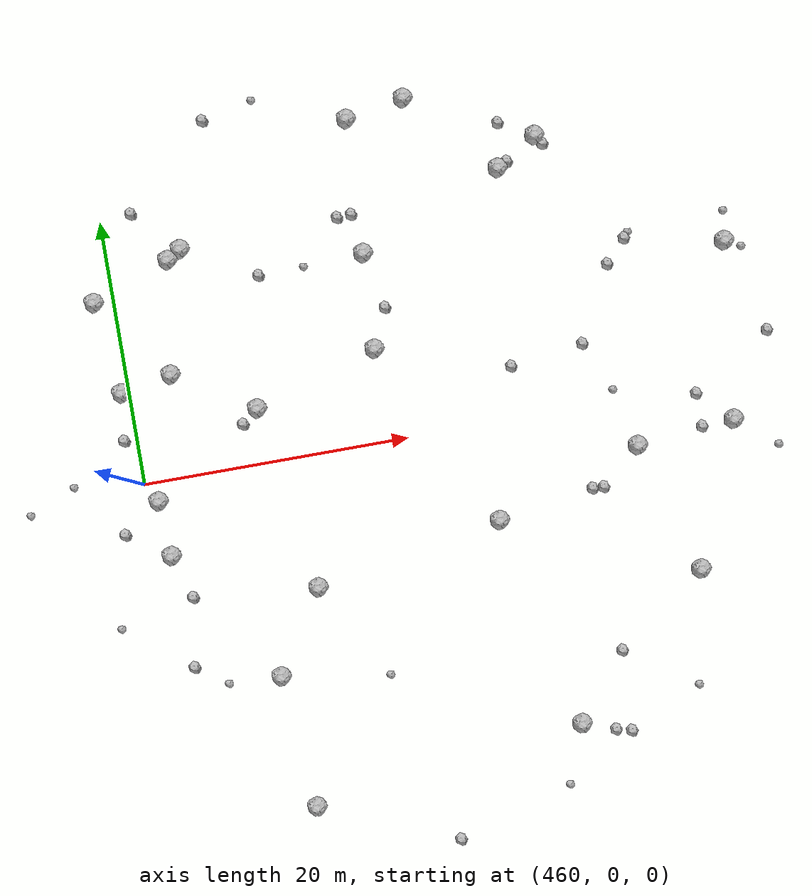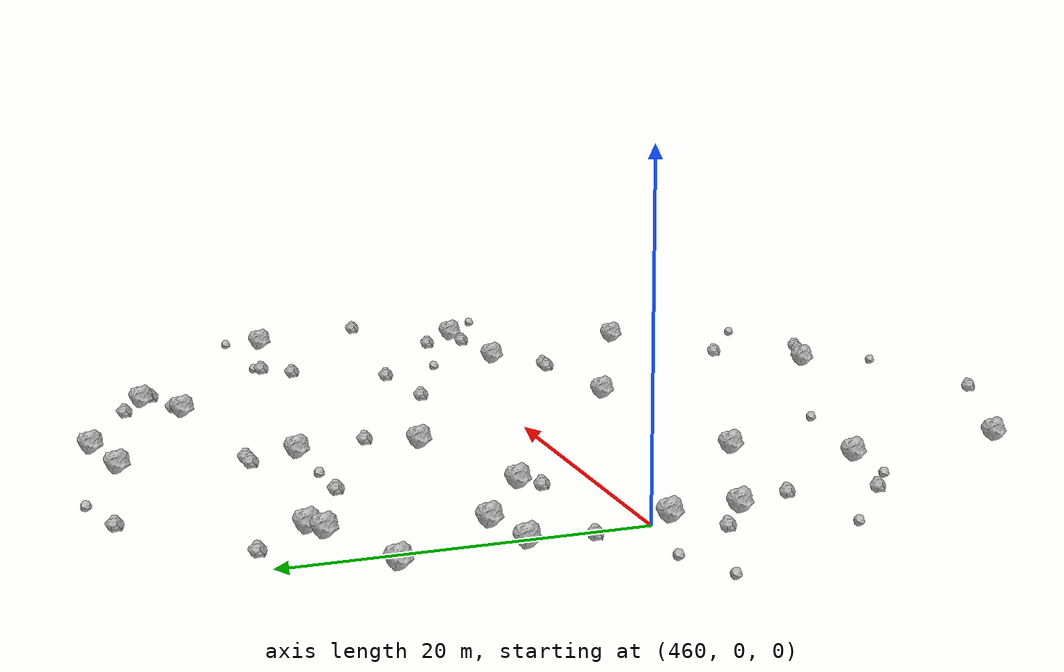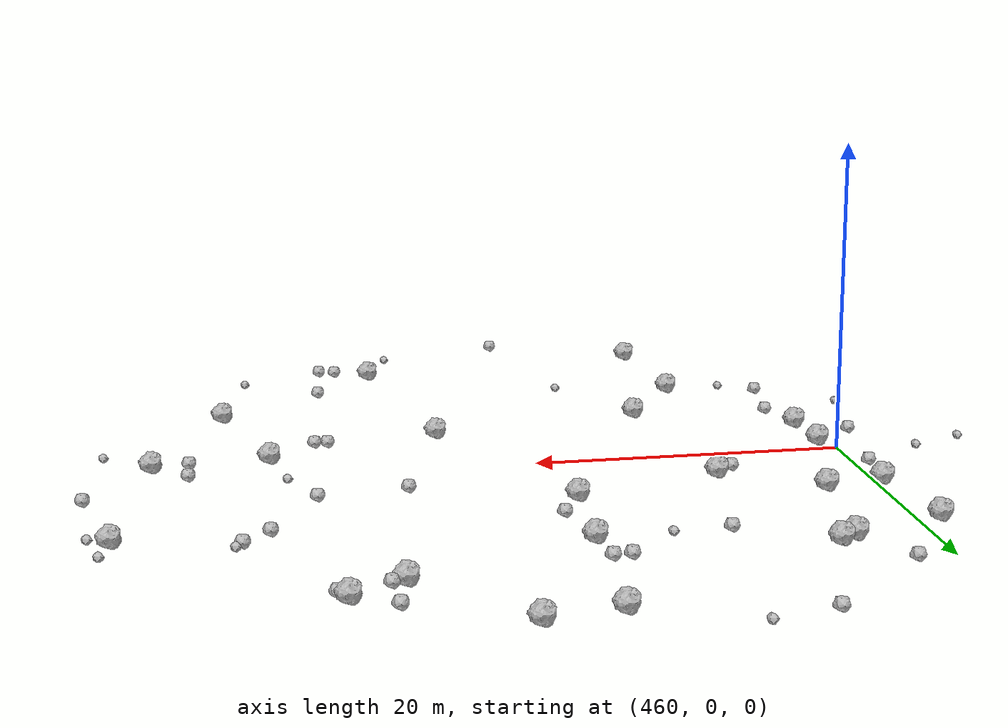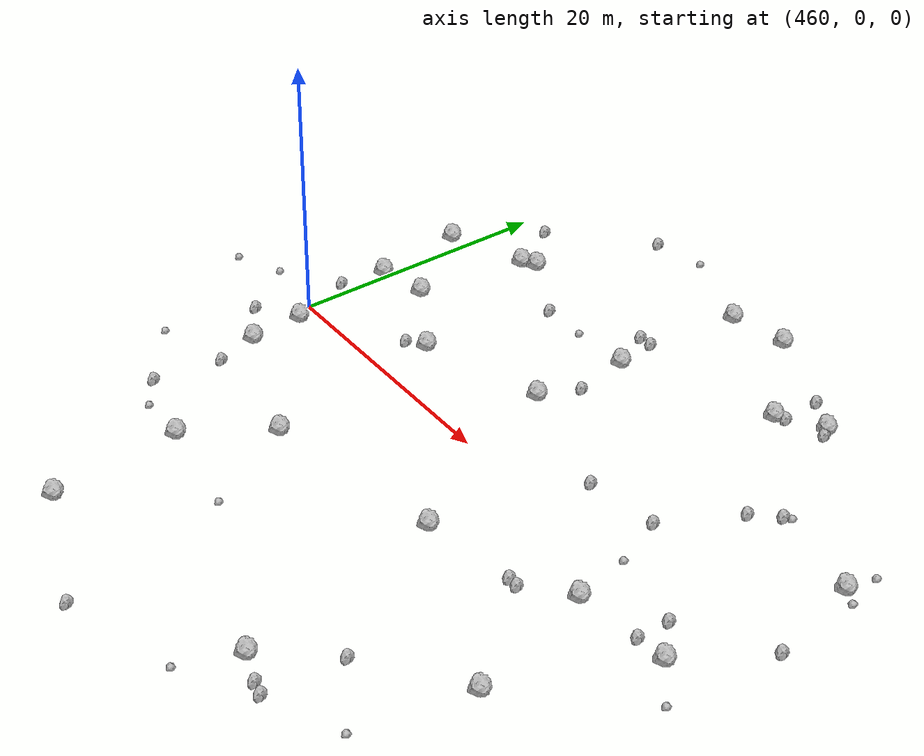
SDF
<sdf version="1.6">
 <world name="default">
  <include><uri>model://sun</uri></include>
  <model name="rock1_12_4">
   <include><uri>model://rock1</uri><pose>479.09438995216635 14.254143508412575 0.5 0 0 0</pose></include>
  </model>
  <model name="rock1_12_5">
   <include><uri>model://rock1</uri><pose>488.9528455162369 -22.9809109389917 0.5 0 0 0</pose></include>
  </model>
  <model name="rock1_12_6">
   <include><uri>model://rock1</uri><pose>468.67835813835376 -25.564746800711298 0.5 0 0 0</pose></include>
  </model>
  <model name="rock1_12_7">
   <include><uri>model://rock1</uri><pose>504.1170772650941 -2.809096154738082 0.5 0 0 0</pose></include>
  </model>
  <model name="rock1_12_8">
   <include><uri>model://rock1</uri><pose>505.89037725520245 10.497972299388671 0.5 0 0 0</pose></include>
  </model>
  <model name="rock1_12_9">
   <include><uri>model://rock1</uri><pose>467.7175810111563 -15.742663338489177 0.5 0 0 0</pose></include>
  </model>
  <model name="rock1_12_10">
   <include><uri>model://rock1</uri><pose>490.153813544646 18.856234155359445 0.5 0 0 0</pose></include>
  </model>
  <model name="rock1_12_11">
   <include><uri>model://rock1</uri><pose>484.06407044528453 25.331857002589764 0.5 0 0 0</pose></include>
  </model>
  <model name="rock1_12_12">
   <include><uri>model://rock1</uri><pose>499.6890702647542 -13.335916234972089 0.5 0 0 0</pose></include>
  </model>
  <model name="rock1_12_13">
   <include><uri>model://rock1</uri><pose>478.6803713840675 7.015661353299613 0.5 0 0 0</pose></include>
  </model>
  <model name="rock1_12_14">
   <include><uri>model://rock1</uri><pose>461.20905230087806 -5.574785045455709 0.5 0 0 0</pose></include>
  </model>
  <model name="rock1_12_15">
   <include><uri>model://rock1</uri><pose>460.92879205279655 -1.4146639590900314 0.5 0 0 0</pose></include>
  </model>
  <model name="rock1_12_16">
   <include><uri>model://rock1</uri><pose>479.5866596808105 24.499907551225377 0.5 0 0 0</pose></include>
  </model>
  <model name="rock1_12_17">
   <include><uri>model://rock1</uri><pose>485.6307781138918 -7.200320577856715 0.5 0 0 0</pose></include>
  </model>
  <model name="rock1_12_18">
   <include><uri>model://rock1</uri><pose>463.37336177099735 7.753586929012101 0.5 0 0 0</pose></include>
  </model>
  <model name="rock1_12_19">
   <include><uri>model://rock1</uri><pose>493.3138959650577 20.834263602846555 0.5 0 0 0</pose></include>
  </model>
  <model name="rock1_12_20">
   <include><uri>model://rock1</uri><pose>496.72657896013806 -3.4935856143528774 0.5 0 0 0</pose></include>
  </model>
  <model name="rock1_12_21">
   <include><uri>model://rock1</uri><pose>469.3013500010062 4.129140868711779 0.5 0 0 0</pose></include>
  </model>
  <model name="rock1_12_22">
   <include><uri>model://rock1</uri><pose>464.57964932640505 16.289464268243897 0.5 0 0 0</pose></include>
  </model>
  <model name="rock1_12_23">
   <include><uri>model://rock1</uri><pose>458.6239280804556 14.04919535004646 0.5 0 0 0</pose></include>
  </model>
  <model name="rock1_12_24">
   <include><uri>model://rock1</uri><pose>471.52041377378964 -9.754964522895303 0.5 0 0 0</pose></include>
  </model>
  <model name="rock1_12_25">
   <include><uri>model://rock1</uri><pose>465.6278170083073 16.94441976155739 0.5 0 0 0</pose></include>
  </model>
  <model name="rock1_12_26">
   <include><uri>model://rock1</uri><pose>459.54353860711575 7.008527247787072 0.5 0 0 0</pose></include>
  </model>
  <model name="rock2_12_0">
   <include><uri>model://rock2</uri><pose>468.87107445078567 26.307079612029447 0.3 0 0 0</pose></include>
  </model>
  <model name="rock2_12_1">
   <include><uri>model://rock2</uri><pose>478.7065732478053 17.328886800524238 0.3 0 0 0</pose></include>
  </model>
  <model name="rock2_12_2">
   <include><uri>model://rock2</uri><pose>492.857486046319 -6.064455897514666 0.3 0 0 0</pose></include>
  </model>
  <model name="rock2_12_3">
   <include><uri>model://rock2</uri><pose>490.9243893020661 19.259980891475443 0.3 0 0 0</pose></include>
  </model>
  <model name="rock2_12_4">
   <include><uri>model://rock2</uri><pose>501.7402950681519 -0.43876255107669593 0.3 0 0 0</pose></include>
  </model>
  <model name="rock2_12_5">
   <include><uri>model://rock2</uri><pose>494.0465440451639 4.712888320022444 0.3 0 0 0</pose></include>
  </model>
  <model name="rock2_12_6">
   <include><uri>model://rock2</uri><pose>458.0531955697223 -3.468535794661335 0.3 0 0 0</pose></include>
  </model>
  <model name="rock2_12_7">
   <include><uri>model://rock2</uri><pose>478.6827111484657 -29.787027923969966 0.3 0 0 0</pose></include>
  </model>
  <model name="rock2_12_8">
   <include><uri>model://rock2</uri><pose>462.2380966979197 -8.88391582462 0.3 0 0 0</pose></include>
  </model>
  <model name="rock2_12_9">
   <include><uri>model://rock2</uri><pose>492.86243868194475 -18.25170649188409 0.3 0 0 0</pose></include>
  </model>
  <model name="rock2_12_10">
   <include><uri>model://rock2</uri><pose>491.35797883265707 -23.874045413391137 0.3 0 0 0</pose></include>
  </model>
  <model name="rock2_12_11">
   <include><uri>model://rock2</uri><pose>496.9610378308364 10.302010794154128 0.3 0 0 0</pose></include>
  </model>
  <model name="rock2_12_12">
   <include><uri>model://rock2</uri><pose>461.481518116302 -13.99563933763006 0.3 0 0 0</pose></include>
  </model>
  <model name="rock2_12_13">
   <include><uri>model://rock2</uri><pose>479.9823301990363 9.961297676078352 0.3 0 0 0</pose></include>
  </model>
  <model name="rock2_12_14">
   <include><uri>model://rock2</uri><pose>492.4906698087074 -24.167469661803917 0.3 0 0 0</pose></include>
  </model>
  <model name="rock2_12_15">
   <include><uri>model://rock2</uri><pose>490.7692197070642 22.28165928499675 0.3 0 0 0</pose></include>
  </model>
  <model name="rock2_12_16">
   <include><uri>model://rock2</uri><pose>501.73207927076476 -2.9331985515677452 0.3 0 0 0</pose></include>
  </model>
  <model name="rock2_12_17">
   <include><uri>model://rock2</uri><pose>498.5455762840381 12.005071579860562 0.3 0 0 0</pose></include>
  </model>
  <model name="rock2_12_18">
   <include><uri>model://rock2</uri><pose>493.80486314637074 20.144169603508026 0.3 0 0 0</pose></include>
  </model>
  <model name="rock2_12_19">
   <include><uri>model://rock2</uri><pose>459.11181054656504 3.4707112155442985 0.3 0 0 0</pose></include>
  </model>
  <model name="rock2_12_20">
   <include><uri>model://rock2</uri><pose>477.6213425037768 17.287255546929757 0.3 0 0 0</pose></include>
  </model>
  <model name="rock2_12_21">
   <include><uri>model://rock2</uri><pose>468.04854128193716 3.168035158861265 0.3 0 0 0</pose></include>
  </model>
  <model name="rock2_12_22">
   <include><uri>model://rock2</uri><pose>488.5096824298889 3.9703189127837177 0.3 0 0 0</pose></include>
  </model>
  <model name="rock2_12_23">
   <include><uri>model://rock2</uri><pose>493.70081762754864 -6.1044922904661405 0.3 0 0 0</pose></include>
  </model>
  <model name="rock2_12_24">
   <include><uri>model://rock2</uri><pose>507.83064624388857 3.3356978981199816 0.3 0 0 0</pose></include>
  </model>
  <model name="rock2_12_25">
   <include><uri>model://rock2</uri><pose>471.07408537799415 13.990358932603208 0.3 0 0 0</pose></include>
  </model>
  <model name="rock2_12_26">
   <include><uri>model://rock2</uri><pose>462.40261147772395 20.24486959414206 0.3 0 0 0</pose></include>
  </model>
  <model name="rock3_12_0">
   <include><uri>model://rock3</uri><pose>456.59510982208116 -10.319709341406643 0.2 0 0 0</pose></include>
  </model>
  <model name="rock3_12_1">
   <include><uri>model://rock3</uri><pose>495.6628840534927 0.8959842493778964 0.2 0 0 0</pose></include>
  </model>
  <model name="rock3_12_2">
   <include><uri>model://rock3</uri><pose>463.76234587811456 -15.646494633976753 0.2 0 0 0</pose></include>
  </model>
  <model name="rock3_12_3">
   <include><uri>model://rock3</uri><pose>474.4892413274761 14.039826141980846 0.2 0 0 0</pose></include>
  </model>
  <model name="rock3_12_4">
   <include><uri>model://rock3</uri><pose>497.99626291633797 -21.745230163424267 0.2 0 0 0</pose></include>
  </model>
  <model name="rock3_12_5">
   <include><uri>model://rock3</uri><pose>507.089517598267 9.880731532817691 0.2 0 0 0</pose></include>
  </model>
  <model name="rock3_12_6">
   <include><uri>model://rock3</uri><pose>454.81849254339255 0.6513831961981076 0.2 0 0 0</pose></include>
  </model>
  <model name="rock3_12_7">
   <include><uri>model://rock3</uri><pose>475.64206162804265 -17.065945870812655 0.2 0 0 0</pose></include>
  </model>
  <model name="rock3_12_8">
   <include><uri>model://rock3</uri><pose>498.89362566663544 12.405208453365795 0.2 0 0 0</pose></include>
  </model>
  <model name="rock3_12_9">
   <include><uri>model://rock3</uri><pose>451.31257815135626 -0.8619992382603883 0.2 0 0 0</pose></include>
  </model>
  <model name="rock3_12_10">
   <include><uri>model://rock3</uri><pose>507.1211226161407 -5.25220211681286 0.2 0 0 0</pose></include>
  </model>
  <model name="rock3_12_11">
   <include><uri>model://rock3</uri><pose>487.28542129220824 -27.30036248617159 0.2 0 0 0</pose></include>
  </model>
  <model name="rock3_12_12">
   <include><uri>model://rock3</uri><pose>506.2595545068403 12.759411073020097 0.2 0 0 0</pose></include>
  </model>
  <model name="rock3_12_13">
   <include><uri>model://rock3</uri><pose>472.7382018467435 27.198157265163644 0.2 0 0 0</pose></include>
  </model>
 </world>
</sdf>
